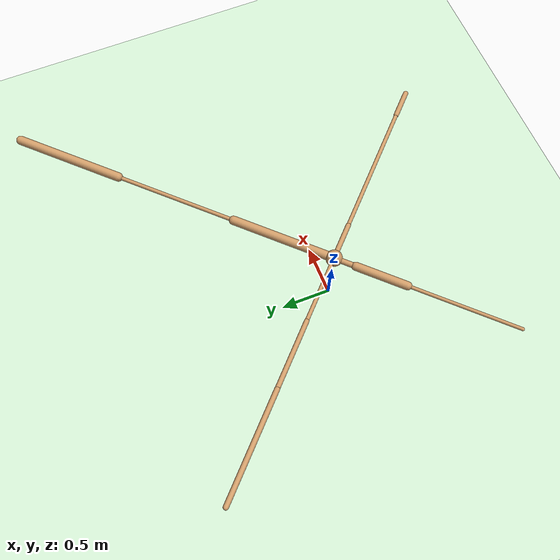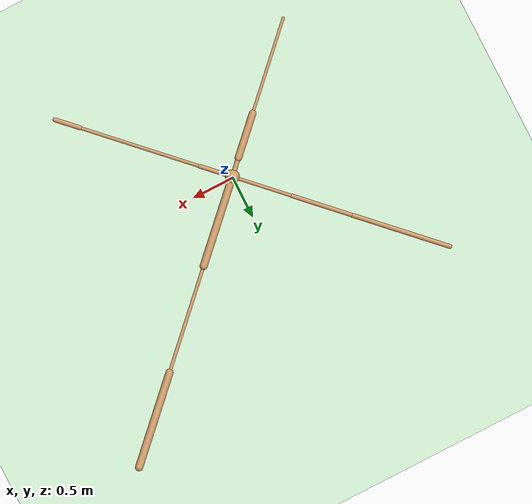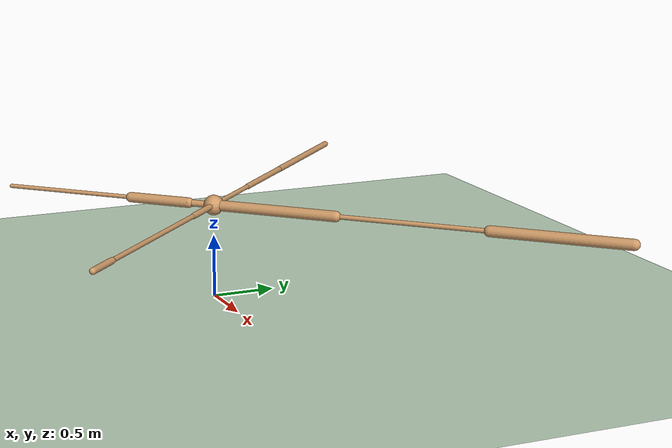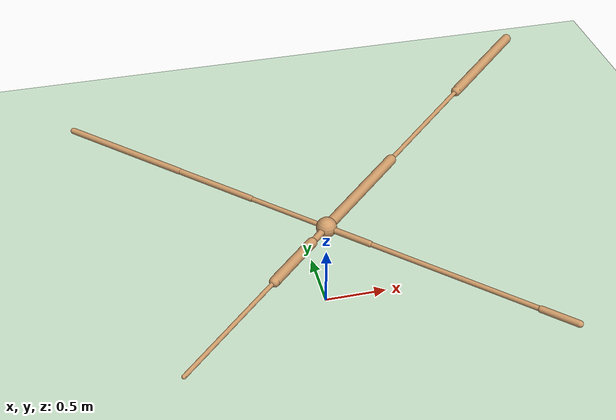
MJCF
<mujoco model="ant">
  <compiler angle="degree" coordinate="local" inertiafromgeom="true" />
  <option integrator="RK4" timestep="0.01" />
  <custom>
    <numeric data="0.0 0.0 0.55 1.0 0.0 0.0 0.0 0.0 1.0 0.0 -1.0 0.0 -1.0 0.0 1.0" name="init_qpos" />
  </custom>
  <default>
    <joint armature="1" damping="1" limited="true" />
    <geom conaffinity="0" condim="3" density="5.0" friction="1 0.5 0.5" margin="0.01" rgba="0.8 0.6 0.4 1" />
  </default>
  <asset>
    <texture builtin="gradient" height="100" rgb1="1 1 1" rgb2="0 0 0" type="skybox" width="100" />
    <texture builtin="flat" height="1278" mark="cross" markrgb="1 1 1" name="texgeom" random="0.01" rgb1="0.8 0.6 0.4" rgb2="0.8 0.6 0.4" type="cube" width="127" />
    <texture builtin="checker" height="100" name="texplane" rgb1="0 0 0" rgb2="0.8 0.8 0.8" type="2d" width="100" />
    <material name="MatPlane" reflectance="0.5" shininess="1" specular="1" texrepeat="60 60" texture="texplane" />
    <material name="geom" texture="texgeom" texuniform="true" />
  </asset>
  <worldbody>
    <light cutoff="100" diffuse="1 1 1" dir="-0 0 -1.3" directional="true" exponent="1" pos="0 0 1.3" specular=".1 .1 .1" />
    <geom conaffinity="1" condim="3" material="MatPlane" name="floor" pos="0 0 0" rgba="0.8 0.9 0.8 1" size="40 40 40" type="plane" />
    <body name="torso" pos="0 0 0.75">
      <camera name="track" mode="trackcom" pos="0 -11 5" xyaxes="1 0 0 0 0.5 1" />
      <geom name="torso_geom" pos="0 0 0" size="0.081215500831604" type="sphere" />
      <joint armature="0" damping="0" limited="false" margin="0.01" name="root" pos="0 0 0" type="free" />
      <body name="front_left_leg" pos="0 0 0">
        <geom fromto="0 0 0 0.7304514646530151 0.7304514646530151 0" name="aux_1_geom" size="0.043722204864025116" type="capsule" />
        <body name="aux_1" pos="0.7304514646530151 0.7304514646530151 0">
          <joint axis="0 0 1" name="hip_1" pos="0.0 0.0 0.0" range="-30 30" type="hinge" />
          <geom fromto="0 0 0 0.8709896802902222 0.8709896802902222 0" name="left_leg_geom" size="0.018938399851322174" type="capsule" />
          <body name="left_leg_geom_aux" pos="0.8709896802902222 0.8709896802902222 0">
            <joint axis="-1 1 0" name="ankle_1" pos="0.0 0.0 0.0" range="30 70" type="hinge" />
            <geom fromto="0 0 0 0.7718082666397095 0.7718082666397095 0" name="left_ankle_geom" size="0.04430225118994713" type="capsule" />
          </body>
        </body>
      </body>
      <body name="front_right_leg" pos="0 0 0">
        <geom fromto="0 0 0 -0.48975151777267456 0.48975151777267456 0" name="aux_2_geom" size="0.0190231092274189" type="capsule" />
        <body name="aux_2" pos="-0.48975151777267456 0.48975151777267456 0">
          <joint axis="0 0 1" name="hip_2" pos="0.0 0.0 0.0" range="-30 30" type="hinge" />
          <geom fromto="0 0 0 -0.4938410520553589 0.4938410520553589 0" name="right_leg_geom" size="0.02384953945875168" type="capsule" />
          <body name="right_leg_geom_aux" pos="-0.4938410520553589 0.4938410520553589 0">
            <joint axis="1 1 0" name="ankle_2" pos="0.0 0.0 0.0" range="-70 -30" type="hinge" />
            <geom fromto="0 0 0 -0.7922989726066589 0.7922989726066589 0" name="right_ankle_geom" size="0.025797558948397636" type="capsule" />
          </body>
        </body>
      </body>
      <body name="back_leg" pos="0 0 0">
        <geom fromto="0 0 0 -0.15302437543869019 -0.15302437543869019 0" name="aux_3_geom" size="0.027033448219299316" type="capsule" />
        <body name="aux_3" pos="-0.15302437543869019 -0.15302437543869019 0">
          <joint axis="0 0 1" name="hip_3" pos="0.0 0.0 0.0" range="-30 30" type="hinge" />
          <geom fromto="0 0 0 -0.3635958433151245 -0.3635958433151245 0" name="back_leg_geom" size="0.04109514132142067" type="capsule" />
          <body name="back_leg_geom_aux" pos="-0.3635958433151245 -0.3635958433151245 0">
            <joint axis="-1 1 0" name="ankle_3" pos="0.0 0.0 0.0" range="-70 -30" type="hinge" />
            <geom fromto="0 0 0 -0.7796650528907776 -0.7796650528907776 0" name="third_ankle_geom" size="0.01678289845585823" type="capsule" />
          </body>
        </body>
      </body>
      <body name="right_back_leg" pos="0 0 0">
        <geom fromto="0 0 0 0.26897168159484863 -0.26897168159484863 0" name="aux_4_geom" size="0.024446098133921623" type="capsule" />
        <body name="aux_4" pos="0.26897168159484863 -0.26897168159484863 0">
          <joint axis="0 0 1" name="hip_4" pos="0.0 0.0 0.0" range="-30 30" type="hinge" />
          <geom fromto="0 0 0 0.9749128818511963 -0.9749128818511963 0" name="rightback_leg_geom" size="0.019177544862031937" type="capsule" />
          <body name="rightback_leg_geom_aux" pos="0.9749128818511963 -0.9749128818511963 0">
            <joint axis="1 1 0" name="ankle_4" pos="0.0 0.0 0.0" range="30 70" type="hinge" />
            <geom fromto="0 0 0 0.2040156126022339 -0.2040156126022339 0" name="fourth_ankle_geom" size="0.025603726506233215" type="capsule" />
          </body>
        </body>
      </body>
    </body>
  </worldbody>
  <actuator>
    <motor ctrllimited="true" ctrlrange="-1.0 1.0" joint="hip_4" gear="150" />
    <motor ctrllimited="true" ctrlrange="-1.0 1.0" joint="ankle_4" gear="150" />
    <motor ctrllimited="true" ctrlrange="-1.0 1.0" joint="hip_1" gear="150" />
    <motor ctrllimited="true" ctrlrange="-1.0 1.0" joint="ankle_1" gear="150" />
    <motor ctrllimited="true" ctrlrange="-1.0 1.0" joint="hip_2" gear="150" />
    <motor ctrllimited="true" ctrlrange="-1.0 1.0" joint="ankle_2" gear="150" />
    <motor ctrllimited="true" ctrlrange="-1.0 1.0" joint="hip_3" gear="150" />
    <motor ctrllimited="true" ctrlrange="-1.0 1.0" joint="ankle_3" gear="150" />
  </actuator>
</mujoco>
